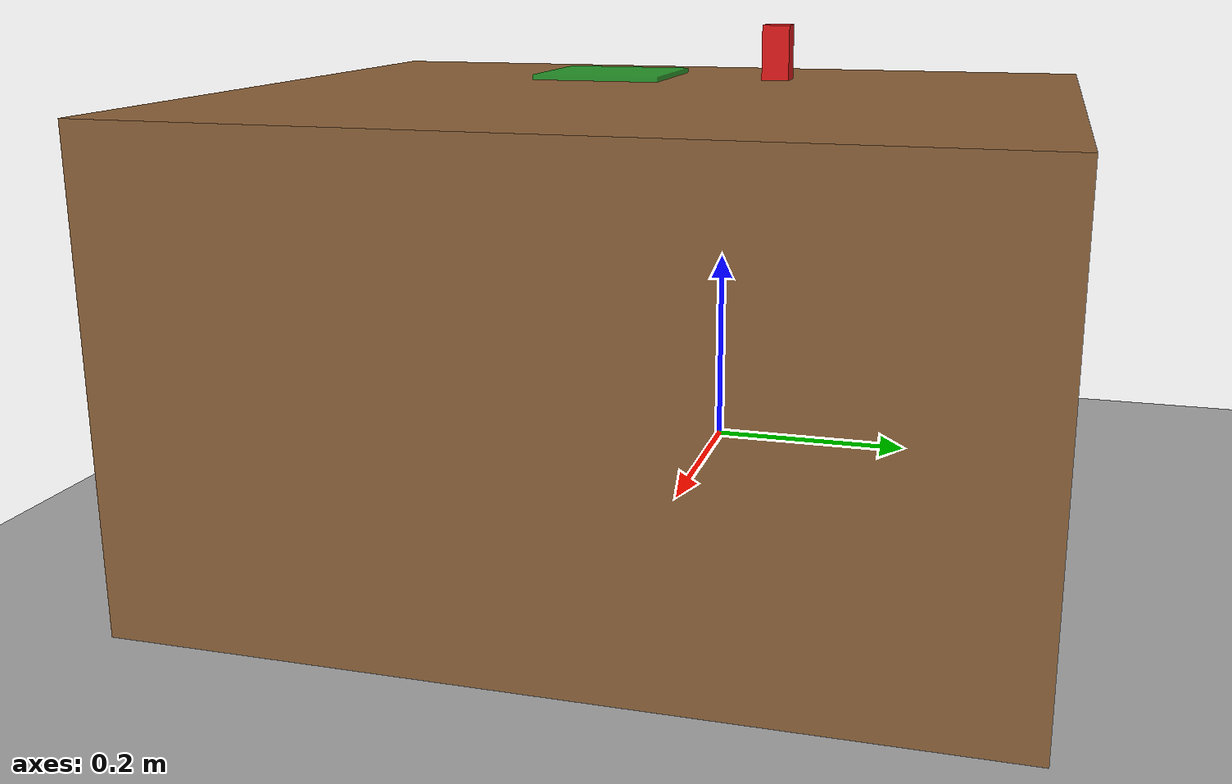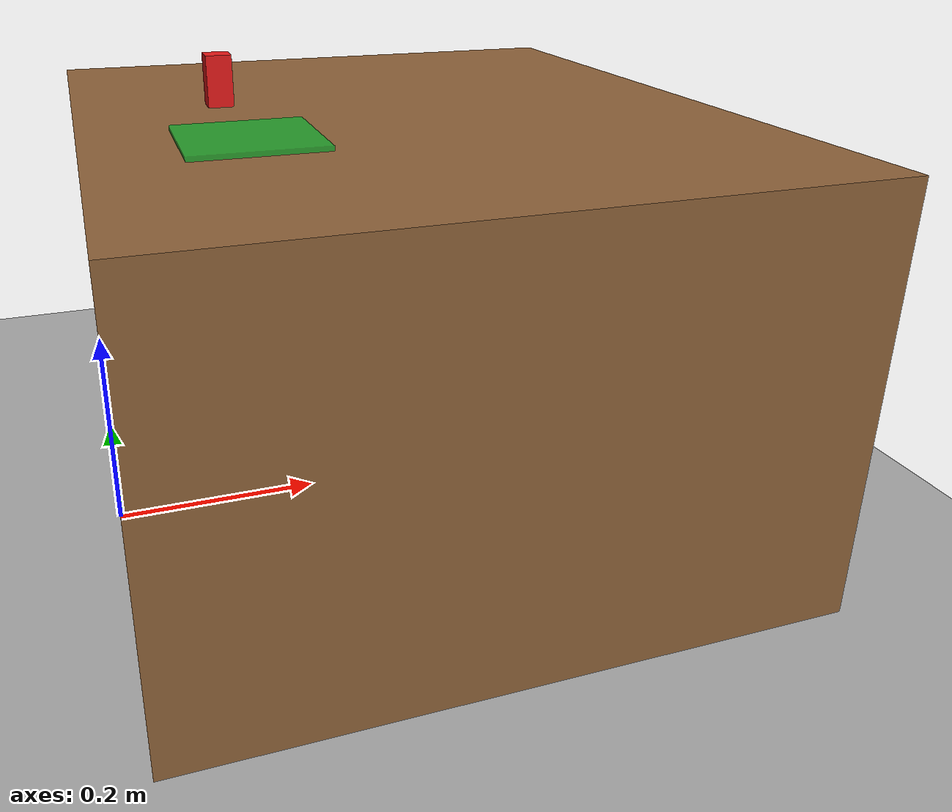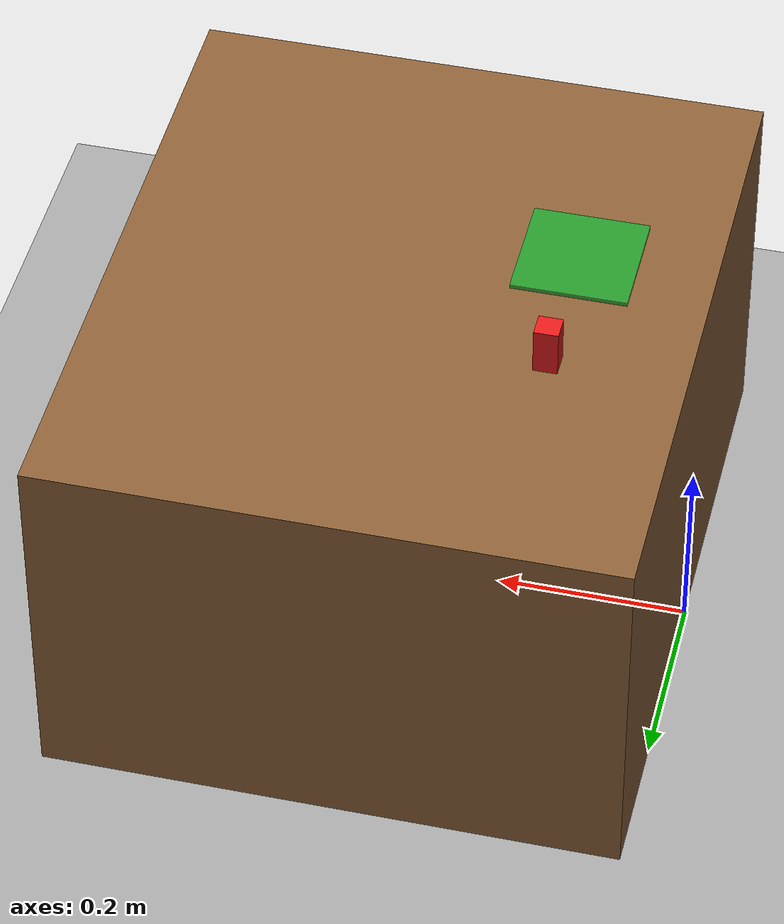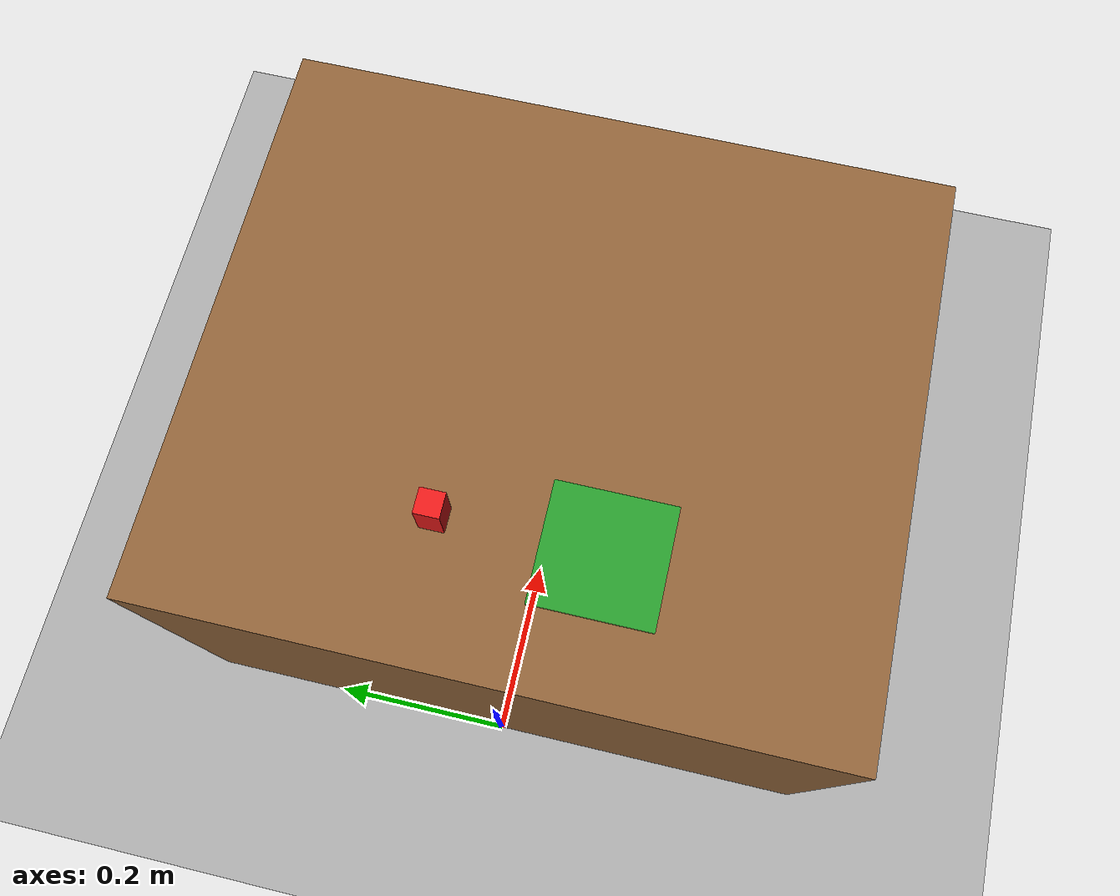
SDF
<?xml version="1.0" ?>
<sdf version="1.6">
  <world name="e5_pick_place_world">
    <plugin name="model_attachment_plugin"
            filename="libgazebo_model_attachment_plugin_lib.so"/>

    <plugin name="gazebo_ros_state"
            filename="libgazebo_ros_state.so">
      <ros>
        <namespace>/gazebo</namespace>
      </ros>
      <update_rate>50.0</update_rate>
    </plugin>

        <!-- Local directional light: no online model download -->
    <light name="sun" type="directional">
      <cast_shadows>true</cast_shadows>
      <pose>0 0 10 0 0 0</pose>
      <diffuse>0.8 0.8 0.8 1</diffuse>
      <specular>0.2 0.2 0.2 1</specular>
      <attenuation>
        <range>1000</range>
        <constant>0.9</constant>
        <linear>0.01</linear>
        <quadratic>0.001</quadratic>
      </attenuation>
      <direction>-0.5 0.1 -0.9</direction>
    </light>

    <!-- Local ground plane: no online model download -->
    <model name="ground_plane">
      <static>true</static>
      <link name="ground_link">
        <collision name="ground_collision">
          <geometry>
            <plane>
              <normal>0 0 1</normal>
              <size>10 10</size>
            </plane>
          </geometry>
        </collision>
        <visual name="ground_visual">
          <geometry>
            <plane>
              <normal>0 0 1</normal>
              <size>10 10</size>
            </plane>
          </geometry>
          <material>
            <ambient>0.65 0.65 0.65 1</ambient>
            <diffuse>0.65 0.65 0.65 1</diffuse>
          </material>
        </visual>
      </link>
    </model>

    <physics name="default_physics" type="ode">
      <real_time_update_rate>1000</real_time_update_rate>
      <max_step_size>0.001</max_step_size>
      <real_time_factor>1.0</real_time_factor>
    </physics>

    <!-- Experiment table -->
    <model name="table">
      <static>true</static>
      <pose>0.30 0 0.20 0 0 0</pose>
      <link name="table_link">
        <visual name="table_visual">
          <geometry>
            <box>
              <size>0.60 0.70 0.40</size>
            </box>
          </geometry>
          <material>
            <ambient>0.55 0.38 0.22 1</ambient>
            <diffuse>0.55 0.38 0.22 1</diffuse>
          </material>
        </visual>
        <collision name="table_collision">
          <geometry>
            <box>
              <size>0.60 0.70 0.40</size>
            </box>
          </geometry>
        </collision>
      </link>
    </model>

    <!-- Fixed pick object at point A -->
    <model name="pick_object">
      <pose>0.14 0.08 0.425 0 0 0</pose>
      <link name="object_link">
        <inertial>
          <mass>0.05</mass>
          <inertia>
            <ixx>0.00002</ixx>
            <iyy>0.00002</iyy>
            <izz>0.00002</izz>
          </inertia>
        </inertial>
        <visual name="object_visual">
          <geometry>
            <box>
              <size>0.025 0.025 0.05</size>
            </box>
          </geometry>
          <material>
            <ambient>0.9 0.1 0.1 1</ambient>
            <diffuse>0.9 0.1 0.1 1</diffuse>
          </material>
        </visual>
        <collision name="object_collision">
          <geometry>
            <box>
              <size>0.025 0.025 0.05</size>
            </box>
          </geometry>
          <surface>
            <friction>
              <ode>
                <mu>10.0</mu>
                <mu2>10.0</mu2>
              </ode>
            </friction>
            <contact>
              <ode>
                <kp>1000000.0</kp>
                <kd>10.0</kd>
                <min_depth>0.001</min_depth>
                <max_vel>0.1</max_vel>
              </ode>
            </contact>
          </surface>
        </collision>
      </link>
    </model>

    <!-- Target region B -->
    <model name="place_region">
      <static>true</static>
      <pose>0.14 -0.08 0.402 0 0 0</pose>
      <link name="region_link">
        <visual name="region_visual">
          <geometry>
            <box>
              <size>0.12 0.12 0.005</size>
            </box>
          </geometry>
          <material>
            <ambient>0.1 0.7 0.2 0.8</ambient>
            <diffuse>0.1 0.7 0.2 0.8</diffuse>
          </material>
        </visual>
        <collision name="region_collision">
          <geometry>
            <box>
              <size>0.12 0.12 0.005</size>
            </box>
          </geometry>
        </collision>
      </link>
    </model>

  </world>
</sdf>
